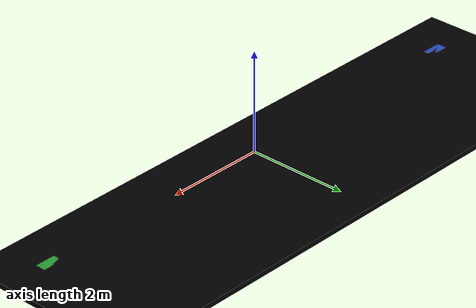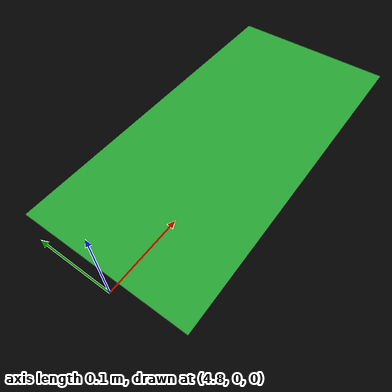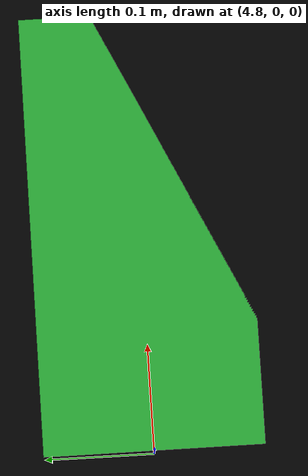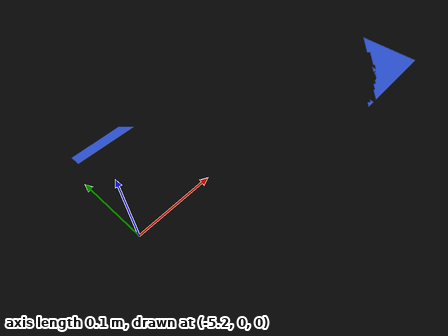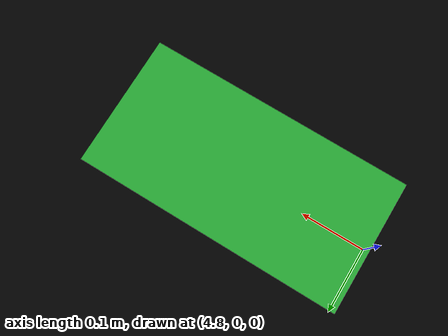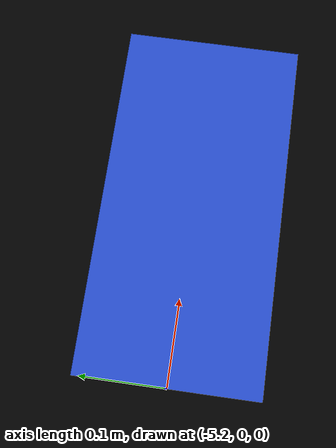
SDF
<?xml version="1.0" ?>
<sdf version="1.3">
  <world name="default">
    <physics type="ode">
      <gravity>0 0 0</gravity>
      <ode>
        <solver>
          <type>quick</type>
          <dt>0.01</dt>
          <iters>40</iters>
          <sor>1.0</sor>
        </solver>
        <constraints>
          <cfm>0.0</cfm>
          <erp>0.2</erp>
          <contact_max_correcting_vel>100.0</contact_max_correcting_vel>
          <contact_surface_layer>0.0</contact_surface_layer>
        </constraints>
      </ode>
    </physics>
    <!-- A global light source -->
    <include>
      <uri>model://sun</uri>
    </include>
    <include>
      <uri>file://models/space</uri>
      <pose>0 0 0 0 0 0</pose>
    </include>
    <include>
      <uri>file://models/prey</uri>
      <pose>5 0 0 0 0 0</pose>
    </include>
    <include>
      <uri>file://models/predator</uri>
      <pose>-5 0 0 0 0 0</pose>
    </include>
  </world>
</sdf>

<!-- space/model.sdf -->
<sdf version="1.5">
  <model name="space">
    <static>true</static>
    <link name="link">
      <collision name="collision">
        <geometry>
          <box>
            <size>200 200 .1</size>
          </box>
        </geometry>
      </collision>
      <visual name="visual">
        <cast_shadows>false</cast_shadows>
        <geometry>
          <box>
            <size>300 300 .1</size>
          </box>
        </geometry>
        <material>
          <ambient>0.9 0.9 0.9 1</ambient>
          <diffuse>0.0 0.0 0.0 1</diffuse>
          <specular>0 0 0 0</specular>
          <emissive>0 0 0 1</emissive>
          <script>
            <uri>model://space/materials/scripts</uri>
            <uri>model://space/materials/textures</uri>
            <name>space</name>
          </script>
        </material>
      </visual>
    </link>
  </model>
</sdf>

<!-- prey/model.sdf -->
<sdf version="1.4">
  <model name="prey">
    <link name="body">
      <pose>0 0 0 0 0 0</pose>
      <inertial>
        <pose>0 0 0 0 0 0</pose>
        <inertia>
          <ixx>0.41667</ixx>
          <ixy>0</ixy>
          <ixz>0</ixz>
          <iyy>1.41667</iyy>
          <iyz>0</iyz>
          <izz>1.66667</izz>
        </inertia>
        <mass>1.0</mass>
      </inertial>
      <visual name="body_vis">
        <pose>0 0 0 0 0 0</pose>
        <geometry>
          <box>
            <size>0.4 0.2 0.1</size>
          </box>
        </geometry>
        <material>
          <script>
            <uri>file://media/materials/scripts/gazebo.material</uri>
            <name>Gazebo/Green</name>
          </script>
        </material>
      </visual>
    </link>

    <plugin name='pursuit-gazebo-prey-controller' filename='libpursuit-gazebo-prey-controller.so'>
    </plugin>

  </model>
</sdf>

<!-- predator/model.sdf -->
<sdf version="1.4">
  <model name="predator">
    <link name="body">
      <pose>0 0 0 0 0 0</pose>
      <inertial>
        <pose>0 0 0 0 0 0</pose>
        <inertia>
          <ixx>0.41667</ixx>
          <ixy>0</ixy>
          <ixz>0</ixz>
          <iyy>1.41667</iyy>
          <iyz>0</iyz>
          <izz>1.66667</izz>
        </inertia>
        <mass>1.0</mass>
      </inertial>
      <visual name="body_vis">
        <pose>0 0 0 0 0 0</pose>
        <geometry>
          <box>
            <size>0.4 0.2 0.1</size>
          </box>
        </geometry>
        <material>
          <script>
            <uri>file://media/materials/scripts/gazebo.material</uri>
            <name>Gazebo/Blue</name>
          </script>
        </material>
      </visual>
    </link>

    <plugin name='pursuit-gazebo-predator-controller' filename='libpursuit-gazebo-predator-controller.so'>
    </plugin>

  </model>
</sdf>
